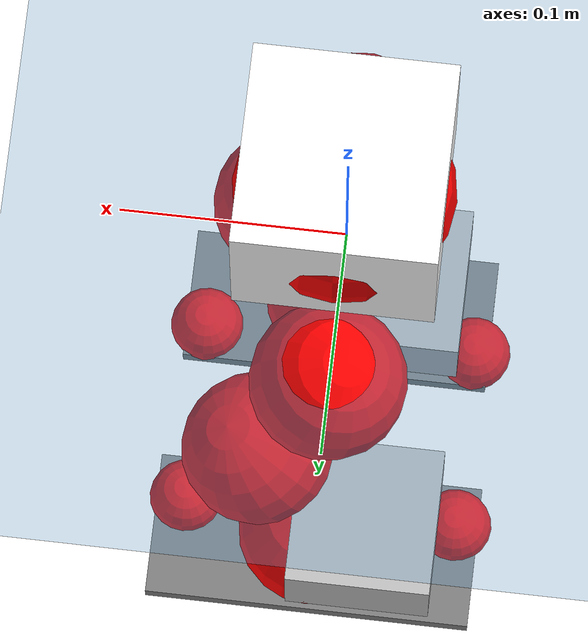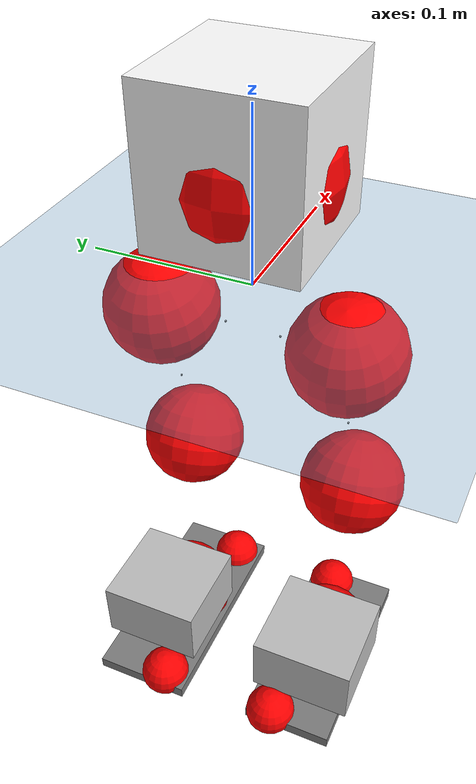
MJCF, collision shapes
<mujoco model="pi_12dof_release_v1">
  <compiler angle="radian" assetdir="assets" balanceinertia="true" inertiafromgeom="false"/>

  <option timestep="0.005" density="1.2" viscosity="2e-05"/>

  <size nkey="1"/>

  <visual>
    <quality shadowsize="8192"/>
    <map shadowclip="0.5"/>
  </visual>

  <default>
    <default class="/">
      <joint armature="0.01" damping="0.01" frictionloss="0.01"/>
      <geom contype="0" conaffinity="0" group="1" solref="-1000 -80"/>
      <site size="0.01 0.005 0.005" group="5"/>
      <general forcelimited="true" biastype="affine" gainprm="20" biasprm="0 -20 -0.5"/>
      <default class="foot">
        <geom size="0.0845 0.036 0.005" type="box" condim="6" group="4" priority="1" friction="0.9 0.2 0.2" solimp="0.015 1 0.005"/>
      </default>
      <default class="reward_collision_sphere">
        <geom group="5" rgba="1 0 0 1"/>
      </default>
    </default>
  </default>

  <asset>
    <texture type="skybox" colorspace="auto" name="//unnamed_texture_0" builtin="gradient" rgb1="0.95 0.95 0.95" rgb2="0.95 0.95 0.95" width="100" height="600"/>
    <texture type="2d" colorspace="auto" name="texplane" builtin="checker" rgb1="0.345 0.575 0.748" rgb2="0.345 0.575 0.748" markrgb="1 1 1" width="512" height="512"/>
    <material name="MatPlane" class="/" texture="texplane" texuniform="true" texrepeat="2 2" specular="0.9"/>
    <mesh name="baselink_1" class="/" file="baselink_1.STL"/>
    <mesh name="r_hip_pitch_link" class="/" file="r_hip_pitch_link.STL"/>
    <mesh name="r_hip_roll_link" class="/" file="r_hip_roll_link.STL"/>
    <mesh name="r_thigh_link" class="/" file="r_thigh_link.STL"/>
    <mesh name="r_calf_link" class="/" file="r_calf_link.STL"/>
    <mesh name="r_ankle_pitch_link" class="/" file="r_ankle_pitch_link.STL"/>
    <mesh name="r_ankle_roll_link" class="/" file="r_ankle_roll_link.STL"/>
    <mesh name="l_hip_pitch_link" class="/" file="l_hip_pitch_link.STL"/>
    <mesh name="l_hip_roll_link" class="/" file="l_hip_roll_link.STL"/>
    <mesh name="l_thigh_link" class="/" file="l_thigh_link.STL"/>
    <mesh name="l_calf_link" class="/" file="l_calf_link.STL"/>
    <mesh name="l_ankle_pitch_link" class="/" file="l_ankle_pitch_link.STL"/>
    <mesh name="l_ankle_roll_link" class="/" file="l_ankle_roll_link.STL"/>
  </asset>

  <worldbody>
    <geom name="floor" class="/" size="100 100 0.125" type="plane" group="0" material="MatPlane"/>
    <light name="toplight_shadow" class="/" pos="0 0 5" dir="0.0990148 0.0990148 -0.990148" type="directional" ambient="0.04 0.04 0.04" diffuse="0.55 0.55 0.55" specular="0.12 0.12 0.12"/>
    <light name="toplight_fill" class="/" pos="0 0 5" dir="0.0990148 0.0990148 -0.990148" type="directional" castshadow="false" ambient="0.04 0.04 0.04" diffuse="0.3 0.3 0.3" specular="0.08 0.08 0.08"/>
    <body name="trunk" pos="0.0012604 0.000194821 0.00089873" quat="1 -0.000182125 0.000249431 -0.000193063">
      <inertial pos="0.00114986 -0.0013752 0.037202" quat="0.696151 0.00750078 0.00896113 0.7178" mass="1.44459" diaginertia="0.00825043 0.00208497 0.0028656"/>
      <joint name="//unnamed_joint_0" type="free"/>
      <geom name="//unnamed_geom_1" class="/" type="mesh" density="0" rgba="1 1 1 1" mesh="baselink_1"/>
      <geom name="//unnamed_geom_2" class="/" size="0.0441178 0.0441178 0.0441178" pos="0 0 0.0744747" type="box" rgba="1 1 1 1"/>
      <geom name="//unnamed_geom_3" class="reward_collision_sphere" size="0.0485296" pos="0 0 0.0651654"/>
      <site name="imu" class="/" pos="0.000385821 -0.00461787 0.00276295" size="0.00882357"/>
      <camera name="track" class="/" pos="0 -1.49542 0" quat="0.707107 0.707107 0 0" mode="trackcom"/>
      <camera name="ego_camera" class="/" pos="0.072632 0 0.167568" quat="-0.5 -0.5 0.5 0.5"/>
      <body name="r_hip_pitch_link" pos="0.00012328 -0.0170144 -0.0313482" quat="0.992231 -0.000434008 -0.124407 8.74828e-05">
        <inertial pos="0.00137766 -0.0418206 0.000159484" quat="-0.0191963 0.705582 -0.0283299 0.707802" mass="0.258237" diaginertia="9.43973e-05 2.27558e-05 5.80216e-05"/>
        <joint name="r_hip_pitch_joint" class="/" pos="0 0 0" axis="-0.000823356 -1 -0.000204261" stiffness="0.00348374" range="-1.72958 1.25883" armature="0.00885622" damping="0.0135743" frictionloss="0.00864932"/>
        <geom name="//unnamed_geom_4" class="/" type="mesh" density="0" rgba="0.75294 0.75294 0.75294 1" mesh="r_hip_pitch_link"/>
        <geom name="//unnamed_geom_5" class="/" size="0.000441178 0.000441178 0.000441178" type="box" rgba="0.75294 0.75294 0.75294 1"/>
        <body name="r_hip_roll_link" pos="-0.000842246 -0.0407256 -0.000306218" quat="1 -3.17633e-05 -1.49687e-05 1.64842e-05">
          <inertial pos="-0.00140492 0.000433736 -0.0581525" quat="0.705925 -0.0788555 -0.0826375 0.699015" mass="0.269276" diaginertia="0.000282934 6.52246e-05 9.18715e-05"/>
          <joint name="r_hip_roll_joint" class="/" pos="0 0 0" axis="-0.999998 0.000712448 -0.00161715" range="-0.12362 0.506604" armature="0.00914909" damping="0" frictionloss="0.00885614"/>
          <geom name="//unnamed_geom_6" class="/" type="mesh" density="0" rgba="0.75294 0.75294 0.75294 1" mesh="r_hip_roll_link"/>
          <geom name="//unnamed_geom_7" class="/" size="0.000441178 0.000441178 0.000441178" type="box" rgba="0.75294 0.75294 0.75294 1"/>
          <geom name="//unnamed_geom_8" class="reward_collision_sphere" size="0.0352943"/>
          <body name="r_thigh_link" pos="-1.89871e-05 0.000382111 -0.0637902" quat="1 -0.000313696 3.30125e-05 -0.000206147">
            <inertial pos="0.000509113 0.000472871 -0.0449128" quat="0.736529 0.676399 -0.00138556 0.00279872" mass="0.0774761" diaginertia="0.000109448 2.22909e-05 4.11199e-05"/>
            <joint name="r_thigh_joint" class="/" pos="0 0 0" axis="-3.49016e-06 -0.000150011 -1" range="-0.29865 0.576518" armature="0.00916662" damping="0.0045225" frictionloss="0.00825513"/>
            <geom name="//unnamed_geom_9" class="/" type="mesh" density="0" rgba="0.75294 0.75294 0.75294 1" mesh="r_thigh_link"/>
            <geom name="//unnamed_geom_10" class="/" size="0.000441178 0.000441178 0.000441178" type="box" rgba="0.75294 0.75294 0.75294 1"/>
            <body name="r_calf_link" pos="-2.49754e-05 -0.00186588 -0.0661374" quat="0.94762 1.86583e-05 0.319399 3.57703e-05">
              <inertial pos="-0.00119767 -0.000924035 -0.0653281" quat="0.999986 -0.00316794 0.000249128 0.00429477" mass="0.559344" diaginertia="0.00304646 0.000827082 0.00012457"/>
              <joint name="r_calf_joint" class="/" pos="0 0 0" axis="-0.00202303 -0.999996 -0.00207867" range="-1.62914 0.644112" armature="0.00865945" damping="0.010415" frictionloss="0.00869009"/>
              <geom name="//unnamed_geom_11" class="/" type="mesh" density="0" rgba="0.75294 0.75294 0.75294 1" mesh="r_calf_link"/>
              <geom name="//unnamed_geom_12" class="/" size="0.000441178 0.000441178 0.000441178" type="box" rgba="0.75294 0.75294 0.75294 1"/>
              <geom name="//unnamed_geom_13" class="reward_collision_sphere" size="0.0352943"/>
              <body name="r_ankle_pitch_link" pos="0.000202197 0.000117929 -0.130016" quat="0.98006 3.73232e-05 -0.1987 1.95597e-05">
                <inertial pos="0.0038035 0.00299738 -0.000421163" quat="-0.000747463 0.70681 -0.00423984 0.70739" mass="0.121008" diaginertia="0.000265002 5.26295e-05 8.48085e-05"/>
                <joint name="r_ankle_pitch_joint" class="/" pos="0 0 0" axis="-0.000470838 -0.999996 0.0026665" range="-1.31534 0.503329" armature="0.00873129" damping="0.00806444" frictionloss="0.00842595"/>
                <geom name="//unnamed_geom_14" class="/" type="mesh" density="0" rgba="0.75294 0.75294 0.75294 1" mesh="r_ankle_pitch_link"/>
                <geom name="//unnamed_geom_15" class="/" size="0.0344119 0.0352943 0.0220589" type="box" rgba="0.75294 0.75294 0.75294 1"/>
                <body name="r_ankle_roll_link" pos="0.0745261 0.00356802 0.000466545" quat="1 3.59014e-05 3.94969e-05 -3.90696e-05">
                  <inertial pos="-0.0233395 -5.92322e-05 -0.0133802" quat="0.561024 0.429595 0.432604 0.559959" mass="0.357315" diaginertia="0.000961496 0.000240617 0.000198995"/>
                  <joint name="r_ankle_roll_joint" class="/" pos="0 0 0" axis="-0.99998 0.00603948 -0.00211722" range="-0.165478 0.146149" armature="0.00904682" damping="0.00355895" frictionloss="0.00873539"/>
                  <geom name="//unnamed_geom_16" class="/" type="mesh" density="0" rgba="0.75294 0.75294 0.75294 1" mesh="r_ankle_roll_link"/>
                  <geom name="//unnamed_geom_17" class="/" type="mesh" rgba="0.75294 0.75294 0.75294 1" mesh="r_ankle_roll_link"/>
                  <geom name="right_foot" class="foot" size="0.0739253 0.0315826 0.00447246" pos="-0.0493897 0 -0.0409611"/>
                  <geom name="//unnamed_geom_19" class="reward_collision_sphere" size="0.0352943" pos="-0.0484213 0 -0.0186187"/>
                  <geom name="//unnamed_geom_20" class="reward_collision_sphere" size="0.0176471" pos="0.0145264 0.0149542 -0.0372374"/>
                  <geom name="//unnamed_geom_21" class="reward_collision_sphere" size="0.0176471" pos="-0.116211 0.0149542 -0.0372374"/>
                  <site name="right_foot" class="foot" pos="-0.0493897 0 -0.0409611" size="0.00882357"/>
                </body>
              </body>
            </body>
          </body>
        </body>
      </body>
      <body name="l_hip_pitch_link" pos="0.000113719 0.0173565 -0.0302589" quat="0.9922 -0.00013558 -0.124654 -8.21758e-05">
        <inertial pos="0.000266149 0.0409782 0.000365509" quat="-0.0436581 0.703053 0.0328726 0.709034" mass="0.271867" diaginertia="0.000109878 2.4728e-05 7.13082e-05"/>
        <joint name="l_hip_pitch_joint" class="/" pos="0 0 0" axis="-0.00262187 0.999991 0.00333655" range="-1.25807 1.74948" armature="0.00878467" damping="0.00684611" frictionloss="0.00876075"/>
        <geom name="//unnamed_geom_22" class="/" type="mesh" density="0" rgba="0.75294 0.75294 0.75294 1" mesh="l_hip_pitch_link"/>
        <geom name="//unnamed_geom_23" class="/" size="0.000441178 0.000441178 0.000441178" type="box" rgba="0.75294 0.75294 0.75294 1"/>
        <body name="l_hip_roll_link" pos="0.000121583 0.041551 0.000433906" quat="1 -6.32077e-05 0.000152257 7.7042e-05">
          <inertial pos="-0.00119 -0.000263484 -0.0565762" quat="0.698865 -0.0729307 -0.0784679 0.707185" mass="0.27025" diaginertia="0.000282885 6.53254e-05 8.91021e-05"/>
          <joint name="l_hip_roll_joint" class="/" pos="0 0 0" axis="-0.999999 -0.00094572 -0.00138338" range="-0.507167 0.112978" armature="0.00902759" damping="0.00556425" frictionloss="0.00902276"/>
          <geom name="//unnamed_geom_24" class="/" type="mesh" density="0" rgba="0.75294 0.75294 0.75294 1" mesh="l_hip_roll_link"/>
          <geom name="//unnamed_geom_25" class="/" size="0.000441178 0.000441178 0.000441178" type="box" rgba="0.75294 0.75294 0.75294 1"/>
          <geom name="//unnamed_geom_26" class="reward_collision_sphere" size="0.0352943"/>
          <body name="l_thigh_link" pos="0.000130628 -0.000774286 -0.0655852" quat="1 0.000207533 -6.36884e-05 -0.00012025">
            <inertial pos="0.000768364 -0.000382498 -0.0444293" quat="0.674739 0.738042 0.00456769 -0.000246176" mass="0.0770263" diaginertia="0.000107184 2.19415e-05 3.97232e-05"/>
            <joint name="l_thigh_joint" class="/" pos="0 0 0" axis="-0.00100329 0.00289377 -0.999995" range="-0.606142 0.285546" armature="0.00844731" damping="0" frictionloss="0.00841155"/>
            <geom name="//unnamed_geom_27" class="/" type="mesh" density="0" rgba="0.75294 0.75294 0.75294 1" mesh="l_thigh_link"/>
            <geom name="//unnamed_geom_28" class="/" size="0.000441178 0.000441178 0.000441178" type="box" rgba="0.75294 0.75294 0.75294 1"/>
            <body name="l_calf_link" pos="-0.000370692 0.00130693 -0.0658872" quat="0.947548 -0.000380923 0.319613 8.99921e-05">
              <inertial pos="0.00131296 0.00169897 -0.0665718" quat="0.999987 0.000709369 -0.00161814 0.00487025" mass="0.55751" diaginertia="0.00299152 0.000818922 0.000121848"/>
              <joint name="l_calf_joint" class="/" pos="0 0 0" axis="-0.0023185 0.999991 -0.00342399" stiffness="0.00367321" range="-0.658516 1.67024" armature="0.00879016" damping="0.00555795" frictionloss="0.00874734"/>
              <geom name="//unnamed_geom_29" class="/" type="mesh" density="0" rgba="0.75294 0.75294 0.75294 1" mesh="l_calf_link"/>
              <geom name="//unnamed_geom_30" class="/" size="0.000441178 0.000441178 0.000441178" type="box" rgba="0.75294 0.75294 0.75294 1"/>
              <geom name="//unnamed_geom_31" class="reward_collision_sphere" size="0.0352943"/>
              <body name="l_ankle_pitch_link" pos="0.000751826 0.000935286 -0.131594" quat="0.980066 -3.656e-07 -0.198674 6.75303e-06">
                <inertial pos="0.0042864 -0.000741905 -0.000117587" quat="-0.00187472 0.707255 0.00128226 0.706955" mass="0.120548" diaginertia="0.00026045 5.13775e-05 8.3653e-05"/>
                <joint name="l_ankle_pitch_joint" class="/" pos="0 0 0" axis="-0.0015716 0.999999 0.000414913" range="-0.502831 1.30695" armature="0.00882666" damping="0.00912954" frictionloss="0.00845375"/>
                <geom name="//unnamed_geom_32" class="/" type="mesh" density="0" rgba="0.75294 0.75294 0.75294 1" mesh="l_ankle_pitch_link"/>
                <geom name="//unnamed_geom_33" class="/" size="0.0344119 0.0352943 0.0220589" type="box" rgba="0.75294 0.75294 0.75294 1"/>
                <body name="l_ankle_roll_link" pos="0.0737307 3.98399e-05 -0.00096273" quat="1 1.25671e-05 -2.3818e-05 8.09893e-06">
                  <inertial pos="-0.0236604 -0.000514018 -0.0131969" quat="0.561416 0.426532 0.434624 0.560343" mass="0.357754" diaginertia="0.000958424 0.000241121 0.000198406"/>
                  <joint name="l_ankle_roll_joint" class="/" pos="0 0 0" axis="-0.999993 -0.00170489 0.00338444" range="-0.151454 0.134381" armature="0.00900539" damping="0.0055602" frictionloss="0.00913599"/>
                  <geom name="//unnamed_geom_34" class="/" type="mesh" density="0" rgba="0.75294 0.75294 0.75294 1" mesh="l_ankle_roll_link"/>
                  <geom name="//unnamed_geom_35" class="/" type="mesh" rgba="0.75294 0.75294 0.75294 1" mesh="l_ankle_roll_link"/>
                  <geom name="left_foot" class="foot" size="0.0780392 0.0342384 0.00430972" pos="-0.0493897 0 -0.0409611"/>
                  <geom name="//unnamed_geom_37" class="reward_collision_sphere" size="0.0352943" pos="-0.0484213 0 -0.0186187"/>
                  <geom name="//unnamed_geom_38" class="reward_collision_sphere" size="0.0176471" pos="0.0145264 -0.0149542 -0.0372374"/>
                  <geom name="//unnamed_geom_39" class="reward_collision_sphere" size="0.0176471" pos="-0.116211 -0.0149542 -0.0372374"/>
                  <site name="left_foot" class="foot" pos="-0.0493897 0 -0.0409611" size="0.00882357"/>
                </body>
              </body>
            </body>
          </body>
        </body>
      </body>
    </body>
  </worldbody>

  <contact>
    <pair class="/" geom1="floor" geom2="right_foot" name="//unnamed_contact_1"/>
    <pair class="/" geom1="floor" geom2="left_foot" name="//unnamed_contact_0"/>
  </contact>

  <actuator>
    <general name="r_hip_pitch_joint" class="/" joint="r_hip_pitch_joint" forcerange="-18.5616 18.5616" gainprm="17.5564" biasprm="0 -17.5564 -0.430491"/>
    <general name="r_hip_roll_joint" class="/" joint="r_hip_roll_joint" forcerange="-17.9522 17.9522" gainprm="17.5564" biasprm="0 -17.5564 -0.430491"/>
    <general name="r_thigh_joint" class="/" joint="r_thigh_joint" forcerange="-18.2232 18.2232" gainprm="17.5564" biasprm="0 -17.5564 -0.430491"/>
    <general name="r_calf_joint" class="/" joint="r_calf_joint" forcerange="-19.2979 19.2979" gainprm="17.5564" biasprm="0 -17.5564 -0.430491"/>
    <general name="r_ankle_pitch_joint" class="/" joint="r_ankle_pitch_joint" forcerange="-18.847 18.847" gainprm="17.5564" biasprm="0 -17.5564 -0.430491"/>
    <general name="r_ankle_roll_joint" class="/" joint="r_ankle_roll_joint" forcerange="-18.1012 18.1012" gainprm="17.5564" biasprm="0 -17.5564 -0.430491"/>
    <general name="l_hip_pitch_joint" class="/" joint="l_hip_pitch_joint" forcerange="-18.5122 18.5122" gainprm="17.5564" biasprm="0 -17.5564 -0.430491"/>
    <general name="l_hip_roll_joint" class="/" joint="l_hip_roll_joint" forcerange="-19.1756 19.1756" gainprm="17.5564" biasprm="0 -17.5564 -0.430491"/>
    <general name="l_thigh_joint" class="/" joint="l_thigh_joint" forcerange="-18.2971 18.2971" gainprm="17.5564" biasprm="0 -17.5564 -0.430491"/>
    <general name="l_calf_joint" class="/" joint="l_calf_joint" forcerange="-18.6903 18.6903" gainprm="17.5564" biasprm="0 -17.5564 -0.430491"/>
    <general name="l_ankle_pitch_joint" class="/" joint="l_ankle_pitch_joint" forcerange="-17.8722 17.8722" gainprm="17.5564" biasprm="0 -17.5564 -0.430491"/>
    <general name="l_ankle_roll_joint" class="/" joint="l_ankle_roll_joint" forcerange="-18.3653 18.3653" gainprm="17.5564" biasprm="0 -17.5564 -0.430491"/>
  </actuator>

  <sensor>
    <gyro site="imu" name="imu_angular_velocity"/>
    <velocimeter site="imu" name="imu_linear_velocity"/>
    <framelinvel objtype="site" objname="left_foot" name="left_foot_global_linear_velocity"/>
    <framelinvel objtype="site" objname="right_foot" name="right_foot_global_linear_velocity"/>
  </sensor>

  <keyframe>
    <key name="home" qpos="0 0 0.291 1 0 0 0 0.4 0 0 -0.8 0.4 0 -0.4 0 0 0.8 -0.4 0"/>
  </keyframe>
</mujoco>
